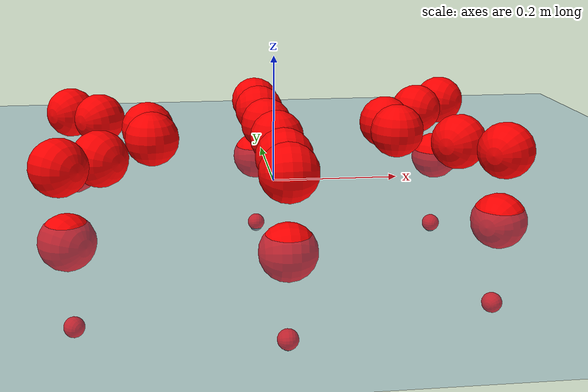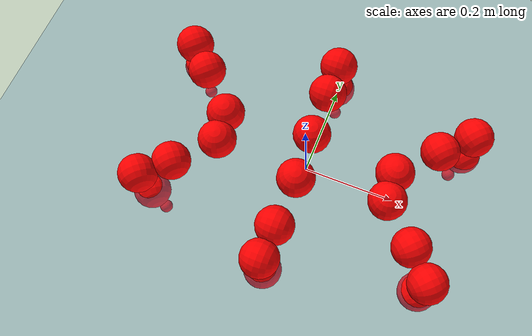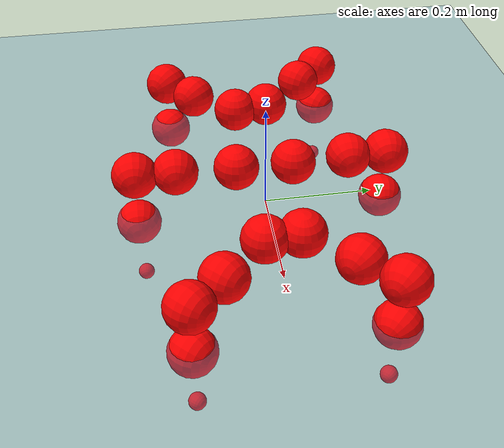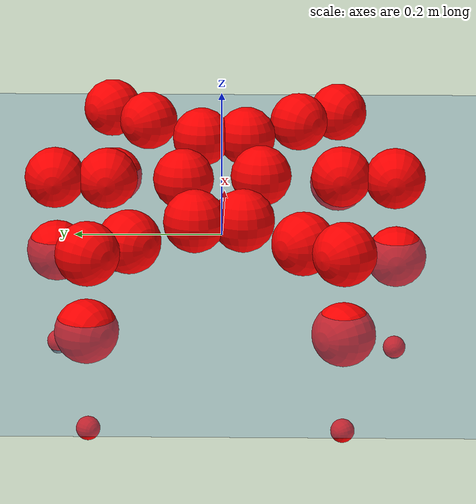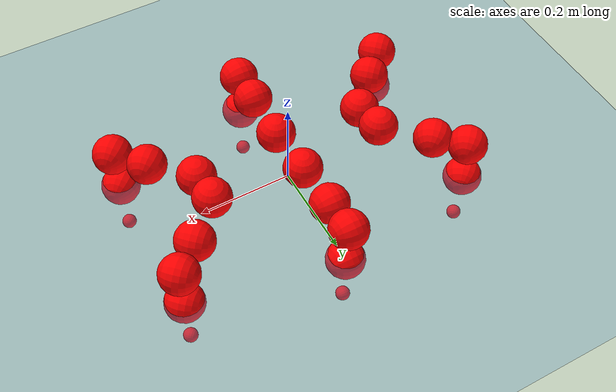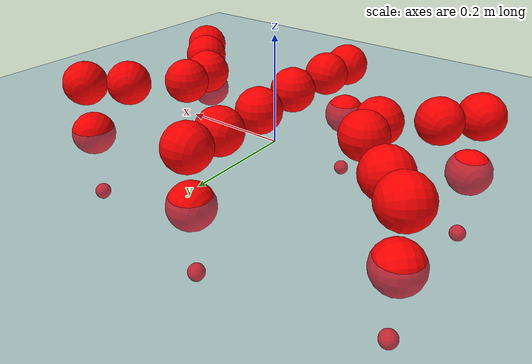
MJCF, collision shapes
<mujoco model="Golem">
  <compiler angle="radian" assetdir="assets" balanceinertia="true" inertiafromgeom="false"/>

  <option timestep="0.005" density="1.2" viscosity="2e-05"/>

  <size nkey="1"/>

  <visual>
    <quality shadowsize="8192"/>
    <map shadowclip="0.5"/>
  </visual>

  <default>
    <default class="/">
      <joint armature="0.01" damping="0.01" frictionloss="0.01"/>
      <geom contype="0" conaffinity="0" group="1" solref="-1000 -80"/>
      <site size="0.01 0.005 0.005" group="5"/>
      <general forcelimited="true" biastype="affine" gainprm="25" biasprm="0 -25 -0.5"/>
      <default class="visual">
        <geom type="mesh" group="2"/>
      </default>
      <default class="collision">
        <geom group="3"/>
      </default>
      <default class="foot">
        <geom size="0.01 0 0" condim="6" group="4" priority="1" solimp="0.015 1 0.01"/>
      </default>
      <default class="reward_collision_sphere">
        <geom group="5" rgba="1 0 0 1"/>
      </default>
    </default>
  </default>

  <asset>
    <texture type="skybox" colorspace="auto" name="//unnamed_texture_0" builtin="gradient" rgb1="0.95 0.95 0.95" rgb2="0.95 0.95 0.95" width="100" height="600"/>
    <texture type="2d" colorspace="auto" name="texplane" builtin="checker" rgb1="0.345 0.575 0.748" rgb2="0.345 0.575 0.748" markrgb="1 1 1" width="512" height="512"/>
    <material name="MatPlane" class="/" texture="texplane" texuniform="true" texrepeat="2 2" specular="0.9"/>
    <mesh name="body" class="/" file="body.stl" scale="0.001 0.001 0.001"/>
    <mesh name="coxa" class="/" file="coxa.stl" scale="0.001 0.001 0.001"/>
    <mesh name="femur" class="/" file="femur.stl" scale="0.001 0.001 0.001"/>
    <mesh name="tibia" class="/" file="tibia.stl" scale="0.001 0.001 0.001"/>
    <mesh name="tarsus" class="/" file="tarsus.stl" scale="0.001 0.001 0.001"/>
  </asset>

  <worldbody>
    <geom name="floor" class="/" size="100 100 0.125" type="plane" group="0" material="MatPlane"/>
    <light name="toplight_shadow" class="/" pos="0 0 5" dir="0.0990148 0.0990148 -0.990148" type="directional" ambient="0.04 0.04 0.04" diffuse="0.55 0.55 0.55" specular="0.12 0.12 0.12"/>
    <light name="toplight_fill" class="/" pos="0 0 5" dir="0.0990148 0.0990148 -0.990148" type="directional" castshadow="false" ambient="0.04 0.04 0.04" diffuse="0.3 0.3 0.3" specular="0.08 0.08 0.08"/>
    <body name="trunk" pos="-0.00155346 0.00116444 0.0041585" quat="1 0.000227865 5.84299e-05 -0.00013466">
      <inertial pos="0.00145993 0.000242336 -0.00418831" quat="0.999995 -0.00253157 -0.000478699 -0.0018777" mass="4.01624" diaginertia="0.0290901 0.00135731 0.0249561"/>
      <joint name="//unnamed_joint_0" type="free"/>
      <geom name="//unnamed_geom_1" class="/" pos="0 0 0.0762467" quat="1 0 0 0" type="mesh" rgba="0.9 0.9 0.9 1" mesh="body"/>
      <site name="imu" class="/" pos="0.164987 -0.00799109 0.131603" size="0.010271"/>
      <camera name="track" class="/" pos="0 -1.3397 0" quat="0.707107 0.707107 0 0" mode="trackcom"/>
      <camera name="ego_camera" class="/" pos="0.158611 0 0.119135" quat="-0.5 -0.5 0.5 0.5"/>
      <body name="coxa_RR" pos="-0.213116 -0.0580442 0.0779438" quat="0.382332 0.000489081 -0.000467209 -0.924025">
        <inertial pos="0.000968785 0.00390509 0.00195138" quat="0.999924 0.00724677 -0.00559425 -0.00825063" mass="0.229107" diaginertia="0.0289851 0.00139396 0.0263844"/>
        <joint name="coxa_joint_RR" class="/" pos="0 0 0" axis="0.0278889 -0.00328029 -0.999606" range="-3.14927 3.14209" armature="0.00986136" damping="0.0124237" frictionloss="0.0112693"/>
        <geom name="//unnamed_geom_2" class="/" type="mesh" rgba="0.2 0.2 0.2 1" mesh="coxa"/>
        <geom name="//unnamed_geom_3" class="reward_collision_sphere" size="0.0410838" pos="-0.0366025 0 0"/>
        <body name="femur_RR" pos="0.0689699 0.0036329 -0.0070815" quat="0.499515 -0.499501 0.499742 0.501239">
          <inertial pos="-0.00282878 0.000626188 -0.00101217" quat="0.999992 -0.00280026 0.00275918 0.000295756" mass="0.213959" diaginertia="0.0264378 0.00131494 0.0235908"/>
          <joint name="femur_joint_RR" class="/" pos="0 0 0" axis="0.0026932 -0.00138714 -0.999995" range="-3.08871 3.20102" armature="0.0103653" damping="0.0306383" frictionloss="0.0100148"/>
          <geom name="//unnamed_geom_4" class="/" type="mesh" rgba="0.9 0.9 0.9 1" mesh="femur"/>
          <geom name="//unnamed_geom_5" class="reward_collision_sphere" size="0.0410838"/>
          <body name="tibia_RR" pos="-0.00371075 -0.0727347 -0.000115194" quat="-0.000395368 1 -0.000261205 0.000158501">
            <inertial pos="0.00232861 -0.00010541 -0.000203215" quat="0.999988 0.00280338 0.000347144 -0.00388623" mass="0.216683" diaginertia="0.0266278 0.00128609 0.0226951"/>
            <joint name="tibia_joint_RR" class="/" pos="0 0 0" axis="-0.00442956 -0.00336866 0.999985" stiffness="0.00240503" range="-3.06483 3.09802" armature="0.0106424" damping="0.0102293" frictionloss="0.011117"/>
            <geom name="//unnamed_geom_6" class="/" type="mesh" rgba="0.2 0.2 0.2 1" mesh="tibia"/>
            <geom name="//unnamed_geom_7" class="reward_collision_sphere" size="0.0410838"/>
            <body name="tarsus_RR" pos="0.108421 -0.00275618 -0.00275436" quat="0.999999 0.000519615 0.000143706 -0.00105859">
              <inertial pos="0.0774433 -0.00275372 0.000714514" quat="0.495181 0.494573 0.502924 0.507209" mass="0.221378" diaginertia="0.0278928 0.001408 0.0245542"/>
              <joint name="tarsus_joint_RR" class="/" pos="0 0 0" axis="0.000393844 0.00126135 0.999999" stiffness="0.0247217" range="-3.09454 3.14287" armature="0.00981888" damping="0.019337" frictionloss="0.00960434"/>
              <geom name="//unnamed_geom_8" class="/" type="mesh" rgba="0.9 0.9 0.9 1" mesh="tarsus"/>
              <geom name="foot_1" class="foot" size="0.0102437" pos="0.136649 0 0" quat="0 -0.707107 0 0.707107"/>
              <geom name="//unnamed_geom_10" class="reward_collision_sphere" size="0.0410838"/>
              <geom name="//unnamed_geom_11" class="reward_collision_sphere" size="0.0154064" pos="0.131159 0 0"/>
              <site name="foot_1" class="foot" pos="0.136649 0 0" quat="0 -0.707107 0 0.707107" size="0.010271"/>
            </body>
          </body>
        </body>
      </body>
      <body name="coxa_RM" pos="0.000389441 -0.0905411 0.0806666" quat="0.706565 0.00207674 -0.000647794 -0.707645">
        <inertial pos="0.00243915 -0.000290248 -0.00140087" quat="0.999945 0.000165497 -0.00122244 0.0103868" mass="0.21488" diaginertia="0.0279881 0.00134984 0.0227793"/>
        <joint name="coxa_joint_RM" class="/" pos="0 0 0" axis="-0.00173667 -0.0051405 -0.999985" range="-3.044 3.15478" armature="0.00895643" damping="0.015729" frictionloss="0.0103484"/>
        <geom name="//unnamed_geom_12" class="/" type="mesh" rgba="0.2 0.2 0.2 1" mesh="coxa"/>
        <geom name="//unnamed_geom_13" class="reward_collision_sphere" size="0.0410838" pos="-0.0366025 0 0"/>
        <body name="femur_RM" pos="0.0719386 -0.00255982 0.000292916" quat="0.499133 -0.500769 0.499555 0.500541">
          <inertial pos="0.00135239 -0.00214248 0.0017935" quat="0.999922 0.0011189 0.0120393 -0.00308999" mass="0.212061" diaginertia="0.0264122 0.00134365 0.023155"/>
          <joint name="femur_joint_RM" class="/" pos="0 0 0" axis="-0.00293262 0.0020105 -0.999994" stiffness="0.0195464" range="-3.13722 3.15319" armature="0.0113295" damping="0.0110297" frictionloss="0.00924641"/>
          <geom name="//unnamed_geom_14" class="/" type="mesh" rgba="0.9 0.9 0.9 1" mesh="femur"/>
          <geom name="//unnamed_geom_15" class="reward_collision_sphere" size="0.0410838"/>
          <body name="tibia_RM" pos="0.000929537 -0.072172 -0.00303573" quat="-0.000476264 0.999999 -4.2209e-05 0.00113954">
            <inertial pos="-0.00289256 -0.00538867 0.00085922" quat="0.999922 -0.000847782 0.0123095 -0.00214947" mass="0.205571" diaginertia="0.0257597 0.00127616 0.0230461"/>
            <joint name="tibia_joint_RM" class="/" pos="0 0 0" axis="-0.00291607 0.00077635 0.999995" range="-3.14722 3.25093" armature="0.0108308" damping="0.0234787" frictionloss="0.0107368"/>
            <geom name="//unnamed_geom_16" class="/" type="mesh" rgba="0.2 0.2 0.2 1" mesh="tibia"/>
            <geom name="//unnamed_geom_17" class="reward_collision_sphere" size="0.0410838"/>
            <body name="tarsus_RM" pos="0.110542 0.00320742 0.00133478" quat="1 -1.58298e-05 -0.000342755 9.20134e-05">
              <inertial pos="0.0751717 -0.0042531 0.00253053" quat="0.503289 0.49974 0.497503 0.499451" mass="0.231423" diaginertia="0.0275105 0.00140104 0.0237703"/>
              <joint name="tarsus_joint_RM" class="/" pos="0 0 0" axis="0.00450581 -0.00133527 0.999989" range="-3.13511 3.09075" armature="0.0106432" damping="0.0144525" frictionloss="0.0104394"/>
              <geom name="//unnamed_geom_18" class="/" type="mesh" rgba="0.9 0.9 0.9 1" mesh="tarsus"/>
              <geom name="foot_2" class="foot" size="0.0110627" pos="0.136649 0 0" quat="0 -0.707107 0 0.707107"/>
              <geom name="//unnamed_geom_20" class="reward_collision_sphere" size="0.0410838"/>
              <geom name="//unnamed_geom_21" class="reward_collision_sphere" size="0.0154064" pos="0.131159 0 0"/>
              <site name="foot_2" class="foot" pos="0.136649 0 0" quat="0 -0.707107 0 0.707107" size="0.010271"/>
            </body>
          </body>
        </body>
      </body>
      <body name="coxa_RF" pos="0.217534 -0.0578529 0.0803115" quat="0.923877 1.40282e-06 -2.65067e-06 -0.38269">
        <inertial pos="0.00287071 0.00262836 -0.0016701" quat="0.999993 -0.00204084 0.00208581 -0.00225416" mass="0.20768" diaginertia="0.0251292 0.00134368 0.02237"/>
        <joint name="coxa_joint_RF" class="/" pos="0 0 0" axis="-0.00100068 -6.42321e-05 -0.999999" range="-3.14996 3.13368" armature="0.0110666" damping="0.00726181" frictionloss="0.0104116"/>
        <geom name="//unnamed_geom_22" class="/" type="mesh" rgba="0.2 0.2 0.2 1" mesh="coxa"/>
        <geom name="//unnamed_geom_23" class="reward_collision_sphere" size="0.0410838" pos="-0.0366025 0 0"/>
        <body name="femur_RF" pos="0.0686208 7.35361e-05 -3.56191e-05" quat="0.50093 -0.500222 0.499542 0.499305">
          <inertial pos="-0.002266 -0.00170349 0.00188684" quat="0.999951 0.00797024 0.00236468 0.00544875" mass="0.236529" diaginertia="0.027425 0.00139176 0.0253184"/>
          <joint name="femur_joint_RF" class="/" pos="0 0 0" axis="-0.00193933 0.00457035 -0.999988" stiffness="0.0233397" range="-3.09933 3.21043" armature="0.0128148" damping="0.0106581" frictionloss="0.0127233"/>
          <geom name="//unnamed_geom_24" class="/" type="mesh" rgba="0.9 0.9 0.9 1" mesh="femur"/>
          <geom name="//unnamed_geom_25" class="reward_collision_sphere" size="0.0410838"/>
          <body name="tibia_RF" pos="1.84383e-05 -0.0761772 -0.00423875" quat="6.68891e-05 1 0.000200423 -1.00527e-05">
            <inertial pos="0.00328228 -0.00218391 0.000111589" quat="0.99999 0.00342564 -0.00255469 0.00148856" mass="0.220717" diaginertia="0.0274456 0.00134499 0.0240321"/>
            <joint name="tibia_joint_RF" class="/" pos="0 0 0" axis="0.00392557 -0.0029029 0.999988" range="-3.13556 3.15606" armature="0.010616" damping="0.0169542" frictionloss="0.0105842"/>
            <geom name="//unnamed_geom_26" class="/" type="mesh" rgba="0.2 0.2 0.2 1" mesh="tibia"/>
            <geom name="//unnamed_geom_27" class="reward_collision_sphere" size="0.0410838"/>
            <body name="tarsus_RF" pos="0.105955 -0.00097315 0.00292942" quat="1 -0.000237914 -0.000146792 -0.000103899">
              <inertial pos="0.0758614 -0.000643464 -0.000404979" quat="0.497688 0.498579 0.482699 0.520315" mass="0.219916" diaginertia="0.0264701 0.00131987 0.0248879"/>
              <joint name="tarsus_joint_RF" class="/" pos="0 0 0" axis="0.000686935 -0.00465481 0.999989" range="-3.1887 3.12289" armature="0.0122935" damping="0.000510518" frictionloss="0.0114296"/>
              <geom name="//unnamed_geom_28" class="/" type="mesh" rgba="0.9 0.9 0.9 1" mesh="tarsus"/>
              <geom name="foot_3" class="foot" size="0.0101818" pos="0.136649 0 0" quat="0 -0.707107 0 0.707107"/>
              <geom name="//unnamed_geom_30" class="reward_collision_sphere" size="0.0410838"/>
              <geom name="//unnamed_geom_31" class="reward_collision_sphere" size="0.0154064" pos="0.131159 0 0"/>
              <site name="foot_3" class="foot" pos="0.136649 0 0" quat="0 -0.707107 0 0.707107" size="0.010271"/>
            </body>
          </body>
        </body>
      </body>
      <body name="coxa_LR" pos="-0.220846 0.0562773 0.0793958" quat="0.382448 -0.00111117 0.000431418 0.923976">
        <inertial pos="0.00231173 -0.00104276 -0.000400966" quat="0.999809 -0.00537498 -0.0187617 -0.0011106" mass="0.209745" diaginertia="0.0273773 0.00131494 0.0239924"/>
        <joint name="coxa_joint_LR" class="/" pos="0 0 0" axis="-0.0114633 0.00160715 -0.999933" range="-3.13365 3.16781" armature="0.00946395" damping="0.0167954" frictionloss="0.0113819"/>
        <geom name="//unnamed_geom_32" class="/" type="mesh" rgba="0.2 0.2 0.2 1" mesh="coxa"/>
        <geom name="//unnamed_geom_33" class="reward_collision_sphere" size="0.0410838" pos="-0.0366025 0 0"/>
        <body name="femur_LR" pos="0.0779387 0.000231553 -0.00130407" quat="0.499814 -0.499834 0.50026 0.500092">
          <inertial pos="0.00220868 0.00361841 -0.00357097" quat="1 0.000520313 0.000142826 -0.000138806" mass="0.210058" diaginertia="0.0277784 0.00131895 0.0236259"/>
          <joint name="femur_joint_LR" class="/" pos="0 0 0" axis="-0.0214061 0.000857936 0.99977" range="-3.1297 3.16042" armature="0.00731953" damping="0.0119625" frictionloss="0.0113372"/>
          <geom name="//unnamed_geom_34" class="/" type="mesh" rgba="0.9 0.9 0.9 1" mesh="femur"/>
          <geom name="//unnamed_geom_35" class="reward_collision_sphere" size="0.0410838"/>
          <body name="tibia_LR" pos="-0.00113384 -0.071678 0.000966478" quat="0.000672883 1 -0.000134419 -0.000338673">
            <inertial pos="4.50101e-06 0.00364912 -0.0010367" quat="0.999984 0.000153379 -0.00502144 0.00256531" mass="0.221428" diaginertia="0.0270929 0.00137354 0.025442"/>
            <joint name="tibia_joint_LR" class="/" pos="0 0 0" axis="0.0154784 0.00389861 -0.999873" stiffness="0.01661" range="-3.15598 3.1963" armature="0.0105117" damping="0.0283775" frictionloss="0.0100542"/>
            <geom name="//unnamed_geom_36" class="/" type="mesh" rgba="0.2 0.2 0.2 1" mesh="tibia"/>
            <geom name="//unnamed_geom_37" class="reward_collision_sphere" size="0.0410838"/>
            <body name="tarsus_LR" pos="0.102008 0.00340728 -0.000210496" quat="1 -9.75695e-06 9.07039e-05 -2.9852e-05">
              <inertial pos="0.0705982 0.00202662 0.00121771" quat="0.500319 0.50116 0.501723 0.496783" mass="0.214181" diaginertia="0.0267925 0.0013426 0.0244951"/>
              <joint name="tarsus_joint_LR" class="/" pos="0 0 0" axis="0.00458551 -0.0150581 -0.999876" stiffness="0.00176198" range="-3.11631 3.10866" armature="0.0113753" damping="0.0367782" frictionloss="0.00995469"/>
              <geom name="//unnamed_geom_38" class="/" type="mesh" rgba="0.9 0.9 0.9 1" mesh="tarsus"/>
              <geom name="foot_4" class="foot" size="0.0100042" pos="0.136649 0 0" quat="0.707107 0 -0.707107 0"/>
              <geom name="//unnamed_geom_40" class="reward_collision_sphere" size="0.0410838"/>
              <geom name="//unnamed_geom_41" class="reward_collision_sphere" size="0.0154064" pos="0.131159 0 0"/>
              <site name="foot_4" class="foot" pos="0.136649 0 0" quat="0.707107 0 -0.707107 0" size="0.010271"/>
            </body>
          </body>
        </body>
      </body>
      <body name="coxa_LM" pos="-0.00422832 0.0872727 0.07731" quat="0.707112 -3.11299e-06 5.76019e-06 0.707102">
        <inertial pos="0.00036874 0.0023218 0.00238501" quat="0.999986 0.00305914 0.00291297 0.00316447" mass="0.218928" diaginertia="0.0260108 0.00130153 0.0243583"/>
        <joint name="coxa_joint_LM" class="/" pos="0 0 0" axis="0.0155168 0.000520461 -0.999879" range="-3.10693 3.04501" armature="0.0104352" damping="0.0155056" frictionloss="0.0105482"/>
        <geom name="//unnamed_geom_42" class="/" type="mesh" rgba="0.2 0.2 0.2 1" mesh="coxa"/>
        <geom name="//unnamed_geom_43" class="reward_collision_sphere" size="0.0410838" pos="-0.0366025 0 0"/>
        <body name="femur_LM" pos="0.0659248 0.00206271 0.00129609" quat="0.500957 -0.499414 0.500038 0.499589">
          <inertial pos="-0.000899358 -0.0026021 0.000358253" quat="1 -0.000101506 0.000660371 -0.000261282" mass="0.202801" diaginertia="0.0256925 0.00132552 0.0231292"/>
          <joint name="femur_joint_LM" class="/" pos="0 0 0" axis="-0.00291814 0.00506058 0.999983" range="-3.07186 3.20463" armature="0.0113232" damping="0.00549031" frictionloss="0.0100569"/>
          <geom name="//unnamed_geom_44" class="/" type="mesh" rgba="0.9 0.9 0.9 1" mesh="femur"/>
          <geom name="//unnamed_geom_45" class="reward_collision_sphere" size="0.0410838"/>
          <body name="tibia_LM" pos="-0.000651728 -0.0708088 0.000675438" quat="-0.000294366 0.999999 -0.00109264 -0.000632706">
            <inertial pos="-0.000319131 0.00102165 0.000266647" quat="0.999947 0.00378231 0.00911585 0.00302163" mass="0.223003" diaginertia="0.0273421 0.00143633 0.0242901"/>
            <joint name="tibia_joint_LM" class="/" pos="0 0 0" axis="-0.00117626 0.000579669 -0.999999" stiffness="0.0268856" range="-3.15061 3.13682" armature="0.0118676" damping="0.026769" frictionloss="0.0101859"/>
            <geom name="//unnamed_geom_46" class="/" type="mesh" rgba="0.2 0.2 0.2 1" mesh="tibia"/>
            <geom name="//unnamed_geom_47" class="reward_collision_sphere" size="0.0410838"/>
            <body name="tarsus_LM" pos="0.103957 -0.00135636 0.00146086" quat="1 -1.17523e-05 -7.66161e-05 0.000120144">
              <inertial pos="0.0726608 0.000194727 -0.00165193" quat="0.497395 0.498949 0.498383 0.505235" mass="0.211728" diaginertia="0.0284383 0.00131526 0.0241159"/>
              <joint name="tarsus_joint_LM" class="/" pos="0 0 0" axis="-0.0130077 -0.0017399 -0.999914" stiffness="0.00475398" range="-3.18765 3.15226" armature="0.00935723" damping="0.00785946" frictionloss="0.0100601"/>
              <geom name="//unnamed_geom_48" class="/" type="mesh" rgba="0.9 0.9 0.9 1" mesh="tarsus"/>
              <geom name="foot_5" class="foot" size="0.0122975" pos="0.136649 0 0" quat="0.707107 0 -0.707107 0"/>
              <geom name="//unnamed_geom_50" class="reward_collision_sphere" size="0.0410838"/>
              <geom name="//unnamed_geom_51" class="reward_collision_sphere" size="0.0154064" pos="0.131159 0 0"/>
              <site name="foot_5" class="foot" pos="0.136649 0 0" quat="0.707107 0 -0.707107 0" size="0.010271"/>
            </body>
          </body>
        </body>
      </body>
      <body name="coxa_LF" pos="0.213291 0.0565631 0.0800696" quat="0.923211 5.84331e-05 -0.000505043 0.384292">
        <inertial pos="0.000978511 0.000315503 -0.00140516" quat="0.999924 -0.00824686 -0.0048614 0.00779208" mass="0.20952" diaginertia="0.0264552 0.00141191 0.0235729"/>
        <joint name="coxa_joint_LF" class="/" pos="0 0 0" axis="-0.00784956 -0.00546181 -0.999954" range="-3.0886 3.17951" armature="0.0111888" damping="0.0285582" frictionloss="0.0112217"/>
        <geom name="//unnamed_geom_52" class="/" type="mesh" rgba="0.2 0.2 0.2 1" mesh="coxa"/>
        <geom name="//unnamed_geom_53" class="reward_collision_sphere" size="0.0410838" pos="-0.0366025 0 0"/>
        <body name="femur_LF" pos="0.0703078 0.00263991 0.00241952" quat="0.499502 -0.500186 0.499671 0.50064">
          <inertial pos="-0.00093106 0.00047464 -0.0033838" quat="0.999998 -0.000931758 -0.00178813 0.000111688" mass="0.201045" diaginertia="0.0274436 0.00130476 0.0238167"/>
          <joint name="femur_joint_LF" class="/" pos="0 0 0" axis="0.00363572 -0.00343823 0.999987" range="-3.09736 3.14043" armature="0.01049" damping="0.00303059" frictionloss="0.00892948"/>
          <geom name="//unnamed_geom_54" class="/" type="mesh" rgba="0.9 0.9 0.9 1" mesh="femur"/>
          <geom name="//unnamed_geom_55" class="reward_collision_sphere" size="0.0410838"/>
          <body name="tibia_LF" pos="-0.00279688 -0.0788133 -0.00212484" quat="-0.00168116 0.999998 -0.00112792 -3.62393e-05">
            <inertial pos="0.0024791 -0.00360672 0.00181823" quat="0.999822 -0.00181146 0.0184642 0.00335406" mass="0.204565" diaginertia="0.0270678 0.00133606 0.0239058"/>
            <joint name="tibia_joint_LF" class="/" pos="0 0 0" axis="-0.00318127 -0.00108611 -0.999994" stiffness="0.0114003" range="-3.24725 3.16913" armature="0.00921231" damping="0" frictionloss="0.0102234"/>
            <geom name="//unnamed_geom_56" class="/" type="mesh" rgba="0.2 0.2 0.2 1" mesh="tibia"/>
            <geom name="//unnamed_geom_57" class="reward_collision_sphere" size="0.0410838"/>
            <body name="tarsus_LF" pos="0.102494 -0.00157375 -0.000513286" quat="1 -5.41665e-05 8.40725e-05 -0.000573853">
              <inertial pos="0.0775201 -0.00143279 -0.000575996" quat="0.500375 0.499548 0.500112 0.499964" mass="0.217303" diaginertia="0.0269718 0.00135568 0.0230153"/>
              <joint name="tarsus_joint_LF" class="/" pos="0 0 0" axis="-0.0121152 -0.0014816 -0.999926" stiffness="0.0142104" range="-3.12125 3.1753" armature="0.00871895" damping="0.0254397" frictionloss="0.00770255"/>
              <geom name="//unnamed_geom_58" class="/" type="mesh" rgba="0.9 0.9 0.9 1" mesh="tarsus"/>
              <geom name="foot_6" class="foot" size="0.0113835" pos="0.136649 0 0" quat="0.707107 0 -0.707107 0"/>
              <geom name="//unnamed_geom_60" class="reward_collision_sphere" size="0.0410838"/>
              <geom name="//unnamed_geom_61" class="reward_collision_sphere" size="0.0154064" pos="0.131159 0 0"/>
              <site name="foot_6" class="foot" pos="0.136649 0 0" quat="0.707107 0 -0.707107 0" size="0.010271"/>
            </body>
          </body>
        </body>
      </body>
    </body>
  </worldbody>

  <contact>
    <pair class="/" geom1="floor" geom2="foot_1" name="//unnamed_contact_0"/>
    <pair class="/" geom1="floor" geom2="foot_2" name="//unnamed_contact_1"/>
    <pair class="/" geom1="floor" geom2="foot_3" name="//unnamed_contact_2"/>
    <pair class="/" geom1="floor" geom2="foot_4" name="//unnamed_contact_3"/>
    <pair class="/" geom1="floor" geom2="foot_5" name="//unnamed_contact_4"/>
    <pair class="/" geom1="floor" geom2="foot_6" name="//unnamed_contact_5"/>
  </contact>

  <actuator>
    <general name="coxa_joint_RR" class="/" joint="coxa_joint_RR" forcerange="-7.55936 7.55936" gainprm="25.6364" biasprm="0 -25.6364 -0.5331"/>
    <general name="femur_joint_RR" class="/" joint="femur_joint_RR" forcerange="-7.24977 7.24977" gainprm="25.6364" biasprm="0 -25.6364 -0.5331"/>
    <general name="tibia_joint_RR" class="/" joint="tibia_joint_RR" forcerange="-7.83752 7.83752" gainprm="25.6364" biasprm="0 -25.6364 -0.5331"/>
    <general name="tarsus_joint_RR" class="/" joint="tarsus_joint_RR" forcerange="-8.01463 8.01463" gainprm="25.6364" biasprm="0 -25.6364 -0.5331"/>
    <general name="coxa_joint_RM" class="/" joint="coxa_joint_RM" forcerange="-8.4456 8.4456" gainprm="25.6364" biasprm="0 -25.6364 -0.5331"/>
    <general name="femur_joint_RM" class="/" joint="femur_joint_RM" forcerange="-8.18021 8.18021" gainprm="25.6364" biasprm="0 -25.6364 -0.5331"/>
    <general name="tibia_joint_RM" class="/" joint="tibia_joint_RM" forcerange="-7.64472 7.64472" gainprm="25.6364" biasprm="0 -25.6364 -0.5331"/>
    <general name="tarsus_joint_RM" class="/" joint="tarsus_joint_RM" forcerange="-7.28024 7.28024" gainprm="25.6364" biasprm="0 -25.6364 -0.5331"/>
    <general name="coxa_joint_RF" class="/" joint="coxa_joint_RF" forcerange="-7.95156 7.95156" gainprm="25.6364" biasprm="0 -25.6364 -0.5331"/>
    <general name="femur_joint_RF" class="/" joint="femur_joint_RF" forcerange="-6.02211 6.02211" gainprm="25.6364" biasprm="0 -25.6364 -0.5331"/>
    <general name="tibia_joint_RF" class="/" joint="tibia_joint_RF" forcerange="-6.46956 6.46956" gainprm="25.6364" biasprm="0 -25.6364 -0.5331"/>
    <general name="tarsus_joint_RF" class="/" joint="tarsus_joint_RF" forcerange="-6.66902 6.66902" gainprm="25.6364" biasprm="0 -25.6364 -0.5331"/>
    <general name="coxa_joint_LR" class="/" joint="coxa_joint_LR" forcerange="-7.39885 7.39885" gainprm="25.6364" biasprm="0 -25.6364 -0.5331"/>
    <general name="femur_joint_LR" class="/" joint="femur_joint_LR" forcerange="-7.38539 7.38539" gainprm="25.6364" biasprm="0 -25.6364 -0.5331"/>
    <general name="tibia_joint_LR" class="/" joint="tibia_joint_LR" forcerange="-6.13029 6.13029" gainprm="25.6364" biasprm="0 -25.6364 -0.5331"/>
    <general name="tarsus_joint_LR" class="/" joint="tarsus_joint_LR" forcerange="-6.46925 6.46925" gainprm="25.6364" biasprm="0 -25.6364 -0.5331"/>
    <general name="coxa_joint_LM" class="/" joint="coxa_joint_LM" forcerange="-7.7467 7.7467" gainprm="25.6364" biasprm="0 -25.6364 -0.5331"/>
    <general name="femur_joint_LM" class="/" joint="femur_joint_LM" forcerange="-6.98198 6.98198" gainprm="25.6364" biasprm="0 -25.6364 -0.5331"/>
    <general name="tibia_joint_LM" class="/" joint="tibia_joint_LM" forcerange="-7.58789 7.58789" gainprm="25.6364" biasprm="0 -25.6364 -0.5331"/>
    <general name="tarsus_joint_LM" class="/" joint="tarsus_joint_LM" forcerange="-6.94599 6.94599" gainprm="25.6364" biasprm="0 -25.6364 -0.5331"/>
    <general name="coxa_joint_LF" class="/" joint="coxa_joint_LF" forcerange="-7.70476 7.70476" gainprm="25.6364" biasprm="0 -25.6364 -0.5331"/>
    <general name="femur_joint_LF" class="/" joint="femur_joint_LF" forcerange="-6.74228 6.74228" gainprm="25.6364" biasprm="0 -25.6364 -0.5331"/>
    <general name="tibia_joint_LF" class="/" joint="tibia_joint_LF" forcerange="-6.9248 6.9248" gainprm="25.6364" biasprm="0 -25.6364 -0.5331"/>
    <general name="tarsus_joint_LF" class="/" joint="tarsus_joint_LF" forcerange="-7.97604 7.97604" gainprm="25.6364" biasprm="0 -25.6364 -0.5331"/>
  </actuator>

  <sensor>
    <gyro site="imu" name="imu_angular_velocity"/>
    <velocimeter site="imu" name="imu_linear_velocity"/>
    <framelinvel objtype="site" objname="foot_1" name="foot_1_global_linear_velocity"/>
    <framelinvel objtype="site" objname="foot_2" name="foot_2_global_linear_velocity"/>
    <framelinvel objtype="site" objname="foot_3" name="foot_3_global_linear_velocity"/>
    <framelinvel objtype="site" objname="foot_4" name="foot_4_global_linear_velocity"/>
    <framelinvel objtype="site" objname="foot_5" name="foot_5_global_linear_velocity"/>
    <framelinvel objtype="site" objname="foot_6" name="foot_6_global_linear_velocity"/>
  </sensor>

  <keyframe>
    <key name="home" qpos="0 0 0.1457 1 0 0 0 0 0 0 0 0 0 0 0 0 0 0 0 0 0 0 0 0 0 0 0 0 0 0 0"/>
  </keyframe>
</mujoco>
